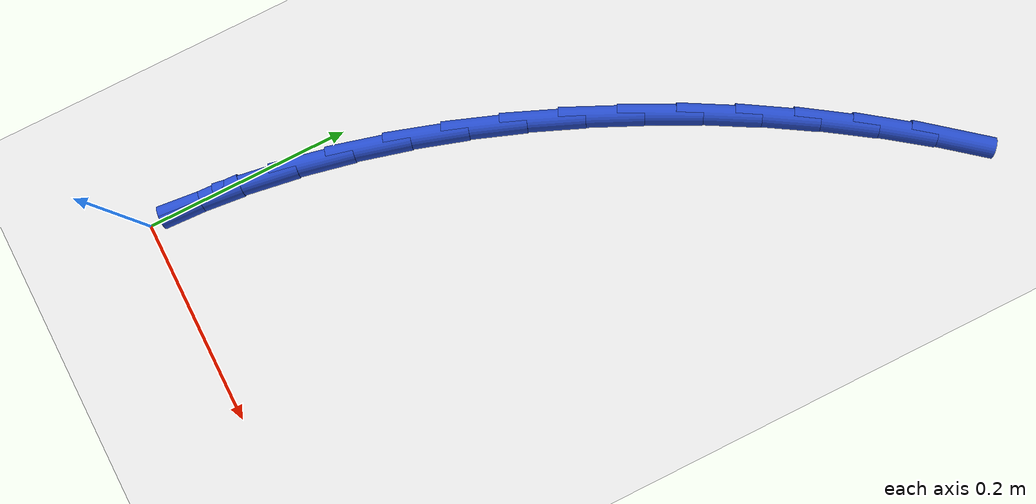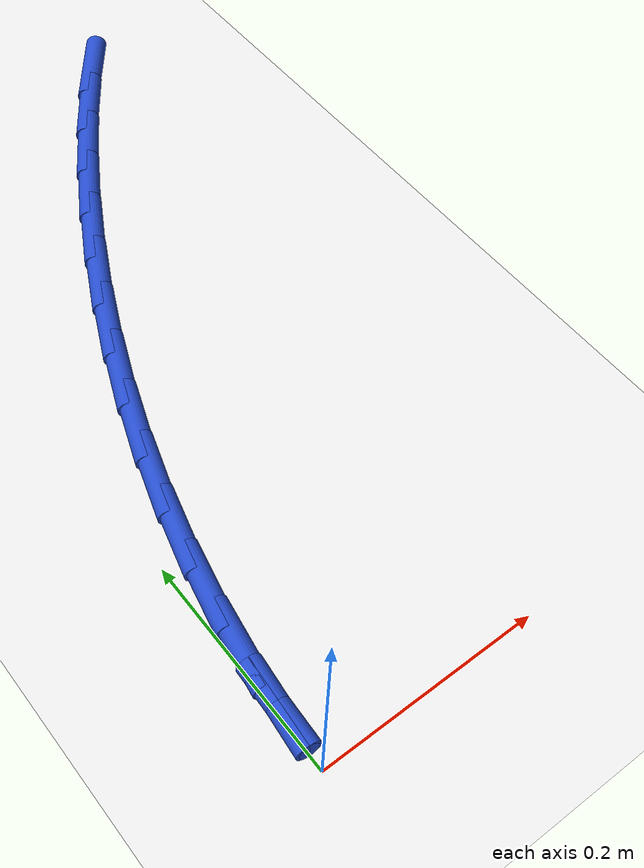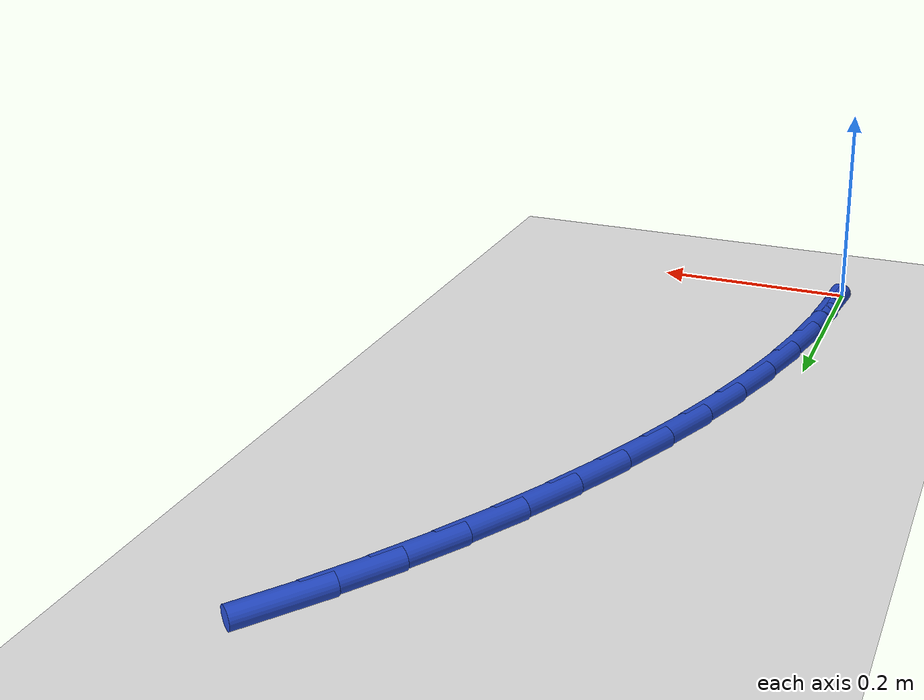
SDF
<sdf version="1.6">
 <world name="default">
  <model name="ground_plane">
   <static>1</static>
   <link name="link">
    <collision name="collision">
     <geometry><plane><normal>0 0 1</normal><size>100 100</size></plane></geometry>
     <surface><friction><ode><mu>100</mu><mu2>50</mu2></ode></friction></surface>
    </collision>
    <visual name="visual">
     <cast_shadows>0</cast_shadows>
     <geometry><plane><normal>0 0 1</normal><size>100 100</size></plane></geometry>
     <material>
      <script><uri>file://media/materials/scripts/gazebo.material</uri><name>Gazebo/WhiteGlow</name></script>
     </material>
    </visual>
   </link>
  </model>
  <model name="line">
   <link name="link_1">
    <pose>0.002267406260662009 0.05440204153414904 0.01 0 1.57 1.4714494428754548</pose>
    <collision name="collision">
     <geometry><cylinder><radius>0.01</radius><length>0.08</length></cylinder></geometry>
    </collision>
    <visual name="visual">
     <material>
      <script><name>Gazebo/Blue</name><uri>file://media/materials/scripts/gazebo.material</uri></script>
     </material>
     <geometry><cylinder><radius>0.01</radius><length>0.08</length></cylinder></geometry>
    </visual>
   </link>
   <link name="link_2">
    <pose>0.007658049835034831 0.10848423131323362 0.01 0 1.57 1.416321725163961</pose>
    <collision name="collision">
     <geometry><cylinder><radius>0.01</radius><length>0.08</length></cylinder></geometry>
    </collision>
    <visual name="visual">
     <material>
      <script><name>Gazebo/Blue</name><uri>file://media/materials/scripts/gazebo.material</uri></script>
     </material>
     <geometry><cylinder><radius>0.01</radius><length>0.08</length></cylinder></geometry>
    </visual>
   </link>
   <link name="link_3">
    <pose>0.016017974951610864 0.1621715238411383 0.01 0 1.57 1.363811197681602</pose>
    <collision name="collision">
     <geometry><cylinder><radius>0.01</radius><length>0.08</length></cylinder></geometry>
    </collision>
    <visual name="visual">
     <material>
      <script><name>Gazebo/Blue</name><uri>file://media/materials/scripts/gazebo.material</uri></script>
     </material>
     <geometry><cylinder><radius>0.01</radius><length>0.08</length></cylinder></geometry>
    </visual>
   </link>
   <link name="link_4">
    <pose>0.027193225838882555 0.2153888736217475 0.01 0 1.57 1.3139081530555852</pose>
    <collision name="collision">
     <geometry><cylinder><radius>0.01</radius><length>0.08</length></cylinder></geometry>
    </collision>
    <visual name="visual">
     <material>
      <script><name>Gazebo/Blue</name><uri>file://media/materials/scripts/gazebo.material</uri></script>
     </material>
     <geometry><cylinder><radius>0.01</radius><length>0.08</length></cylinder></geometry>
    </visual>
   </link>
   <link name="link_5">
    <pose>0.04102984672534236 0.2680612351589458 0.01 0 1.57 1.2665524162810404</pose>
    <collision name="collision">
     <geometry><cylinder><radius>0.01</radius><length>0.08</length></cylinder></geometry>
    </collision>
    <visual name="visual">
     <material>
      <script><name>Gazebo/Blue</name><uri>file://media/materials/scripts/gazebo.material</uri></script>
     </material>
     <geometry><cylinder><radius>0.01</radius><length>0.08</length></cylinder></geometry>
    </visual>
   </link>
   <link name="link_6">
    <pose>0.057373881839482783 0.3201135629566177 0.01 0 1.57 1.2216447893453657</pose>
    <collision name="collision">
     <geometry><cylinder><radius>0.01</radius><length>0.08</length></cylinder></geometry>
    </collision>
    <visual name="visual">
     <material>
      <script><name>Gazebo/Blue</name><uri>file://media/materials/scripts/gazebo.material</uri></script>
     </material>
     <geometry><cylinder><radius>0.01</radius><length>0.08</length></cylinder></geometry>
    </visual>
   </link>
   <link name="link_7">
    <pose>0.07607137540979628 0.37147081151864786 0.01 0 1.57 1.1790573003622393</pose>
    <collision name="collision">
     <geometry><cylinder><radius>0.01</radius><length>0.08</length></cylinder></geometry>
    </collision>
    <visual name="visual">
     <material>
      <script><name>Gazebo/Blue</name><uri>file://media/materials/scripts/gazebo.material</uri></script>
     </material>
     <geometry><cylinder><radius>0.01</radius><length>0.08</length></cylinder></geometry>
    </visual>
   </link>
   <link name="link_8">
    <pose>0.09696837166477526 0.42205793534892067 0.01 0 1.57 1.1386418474863103</pose>
    <collision name="collision">
     <geometry><cylinder><radius>0.01</radius><length>0.08</length></cylinder></geometry>
    </collision>
    <visual name="visual">
     <material>
      <script><name>Gazebo/Blue</name><uri>file://media/materials/scripts/gazebo.material</uri></script>
     </material>
     <geometry><cylinder><radius>0.01</radius><length>0.08</length></cylinder></geometry>
    </visual>
   </link>
   <link name="link_9">
    <pose>0.11991091483291225 0.47179988895132063 0.01 0 1.57 1.1001980199945016</pose>
    <collision name="collision">
     <geometry><cylinder><radius>0.01</radius><length>0.08</length></cylinder></geometry>
    </collision>
    <visual name="visual">
     <material>
      <script><name>Gazebo/Blue</name><uri>file://media/materials/scripts/gazebo.material</uri></script>
     </material>
     <geometry><cylinder><radius>0.01</radius><length>0.08</length></cylinder></geometry>
    </visual>
   </link>
   <link name="link_10">
    <pose>0.14474717882591492 0.5206210910184241 0.01 0 1.57 1.0622496772228325</pose>
    <collision name="collision">
     <geometry><cylinder><radius>0.01</radius><length>0.08</length></cylinder></geometry>
    </collision>
    <visual name="visual">
     <material>
      <script><name>Gazebo/Blue</name><uri>file://media/materials/scripts/gazebo.material</uri></script>
     </material>
     <geometry><cylinder><radius>0.01</radius><length>0.08</length></cylinder></geometry>
    </visual>
   </link>
   <link name="link_11">
    <pose>0.17139718069800136 0.5684278850812543 0.01 0 1.57 1.0230813390122204</pose>
    <collision name="collision">
     <geometry><cylinder><radius>0.01</radius><length>0.08</length></cylinder></geometry>
    </collision>
    <visual name="visual">
     <material>
      <script><name>Gazebo/Blue</name><uri>file://media/materials/scripts/gazebo.material</uri></script>
     </material>
     <geometry><cylinder><radius>0.01</radius><length>0.08</length></cylinder></geometry>
    </visual>
   </link>
   <link name="link_12">
    <pose>0.1998683826733267 0.6151046141636389 0.01 0 1.57 0.9825087898194266</pose>
    <collision name="collision">
     <geometry><cylinder><radius>0.01</radius><length>0.08</length></cylinder></geometry>
    </collision>
    <visual name="visual">
     <material>
      <script><name>Gazebo/Blue</name><uri>file://media/materials/scripts/gazebo.material</uri></script>
     </material>
     <geometry><cylinder><radius>0.01</radius><length>0.08</length></cylinder></geometry>
    </visual>
   </link>
   <link name="link_13">
    <pose>0.2301735348932722 0.660534290891615 0.01 0 1.57 0.9404564025440847</pose>
    <collision name="collision">
     <geometry><cylinder><radius>0.01</radius><length>0.08</length></cylinder></geometry>
    </collision>
    <visual name="visual">
     <material>
      <script><name>Gazebo/Blue</name><uri>file://media/materials/scripts/gazebo.material</uri></script>
     </material>
     <geometry><cylinder><radius>0.01</radius><length>0.08</length></cylinder></geometry>
    </visual>
   </link>
   <link name="link_14">
    <pose>0.2623253874992191 0.7045999278912186 0.01 0 1.57 0.8968632627991712</pose>
    <collision name="collision">
     <geometry><cylinder><radius>0.01</radius><length>0.08</length></cylinder></geometry>
    </collision>
    <visual name="visual">
     <material>
      <script><name>Gazebo/Blue</name><uri>file://media/materials/scripts/gazebo.material</uri></script>
     </material>
     <geometry><cylinder><radius>0.01</radius><length>0.08</length></cylinder></geometry>
    </visual>
   </link>
   <link name="link_121">
    <pose>0.002304448334881963 0.054376474868184796 0.01 0 1.57 1.5284421614814445</pose>
    <collision name="collision">
     <geometry><cylinder><radius>0.01</radius><length>0.08</length></cylinder></geometry>
    </collision>
    <visual name="visual">
     <material>
      <script><name>Gazebo/Blue</name><uri>file://media/materials/scripts/gazebo.material</uri></script>
     </material>
     <geometry><cylinder><radius>0.01</radius><length>0.08</length></cylinder></geometry>
    </visual>
   </link>
  </model>
 </world>
</sdf>
